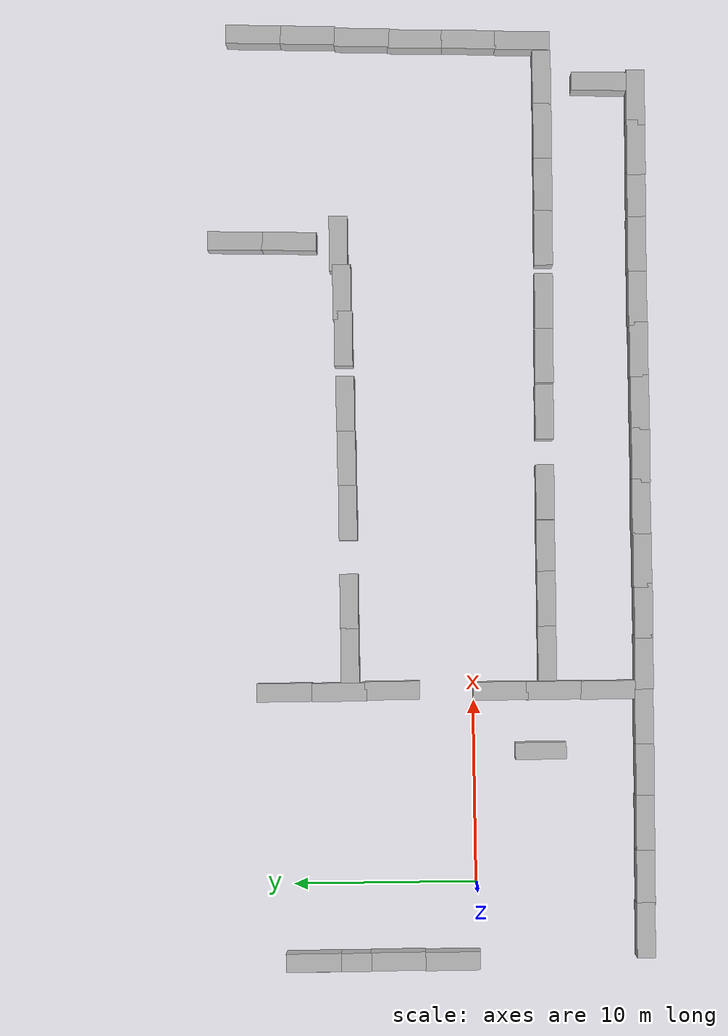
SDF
<sdf version="1.6">
 <world name="default">
  <model name="ground_plane">
   <static>1</static>
   <link name="link">
    <collision name="collision">
     <geometry><plane><normal>0 0 1</normal><size>100 100</size></plane></geometry>
     <surface>
      <contact><collide_bitmask>65535</collide_bitmask></contact>
      <friction><ode><mu>100</mu><mu2>50</mu2></ode></friction>
     </surface>
    </collision>
    <visual name="visual">
     <cast_shadows>0</cast_shadows>
     <geometry><plane><normal>0 0 1</normal><size>100 100</size></plane></geometry>
     <material>
      <script><uri>file://media/materials/scripts/gazebo.material</uri><name>Gazebo/Grey</name></script>
     </material>
    </visual>
   </link>
  </model>
  <model name="brick_box_3x1x3_clone_0">
   <static>1</static>
   <link name="chassis">
    <pose>0 0 1.5 0 -0 0</pose>
    <collision name="collision"><geometry><box><size>3 1 3</size></box></geometry></collision>
    <visual name="visual">
     <geometry><mesh><uri>model://brick_box_3x1x3/meshes/simple_box.dae</uri><scale>3 1 3</scale></mesh></geometry>
     <material>
      <script>
       <uri>model://brick_box_3x1x3/materials/scripts</uri>
       <uri>model://brick_box_3x1x3/materials/textures</uri>
       <name>BrickBox/Diffuse</name>
      </script>
     </material>
    </visual>
   </link>
   <pose>-2.58798 -9.18934 0 0 -0 0</pose>
  </model>
  <model name="brick_box_3x1x3_clone_1">
   <static>1</static>
   <link name="chassis">
    <pose>0 0 1.5 0 -0 0</pose>
    <collision name="collision"><geometry><box><size>3 1 3</size></box></geometry></collision>
    <visual name="visual">
     <geometry><mesh><uri>model://brick_box_3x1x3/meshes/simple_box.dae</uri><scale>3 1 3</scale></mesh></geometry>
     <material>
      <script>
       <uri>model://brick_box_3x1x3/materials/scripts</uri>
       <uri>model://brick_box_3x1x3/materials/textures</uri>
       <name>BrickBox/Diffuse</name>
      </script>
     </material>
    </visual>
   </link>
   <pose>0.25233 -9.21535 0 0 -0 0</pose>
  </model>
  <model name="brick_box_3x1x3_clone_2">
   <static>1</static>
   <link name="chassis">
    <pose>0 0 1.5 0 -0 0</pose>
    <collision name="collision"><geometry><box><size>3 1 3</size></box></geometry></collision>
    <visual name="visual">
     <geometry><mesh><uri>model://brick_box_3x1x3/meshes/simple_box.dae</uri><scale>3 1 3</scale></mesh></geometry>
     <material>
      <script>
       <uri>model://brick_box_3x1x3/materials/scripts</uri>
       <uri>model://brick_box_3x1x3/materials/textures</uri>
       <name>BrickBox/Diffuse</name>
      </script>
     </material>
    </visual>
   </link>
   <pose>3.25958 -9.22941 0 0 -0 0</pose>
  </model>
  <model name="brick_box_3x1x3_clone_3">
   <static>1</static>
   <link name="chassis">
    <pose>0 0 1.5 0 -0 0</pose>
    <collision name="collision"><geometry><box><size>3 1 3</size></box></geometry></collision>
    <visual name="visual">
     <geometry><mesh><uri>model://brick_box_3x1x3/meshes/simple_box.dae</uri><scale>3 1 3</scale></mesh></geometry>
     <material>
      <script>
       <uri>model://brick_box_3x1x3/materials/scripts</uri>
       <uri>model://brick_box_3x1x3/materials/textures</uri>
       <name>BrickBox/Diffuse</name>
      </script>
     </material>
    </visual>
   </link>
   <pose>6.22517 -9.25435 0 0 -0 0</pose>
  </model>
  <model name="brick_box_3x1x3_clone_4">
   <static>1</static>
   <link name="chassis">
    <pose>0 0 1.5 0 -0 0</pose>
    <collision name="collision"><geometry><box><size>3 1 3</size></box></geometry></collision>
    <visual name="visual">
     <geometry><mesh><uri>model://brick_box_3x1x3/meshes/simple_box.dae</uri><scale>3 1 3</scale></mesh></geometry>
     <material>
      <script>
       <uri>model://brick_box_3x1x3/materials/scripts</uri>
       <uri>model://brick_box_3x1x3/materials/textures</uri>
       <name>BrickBox/Diffuse</name>
      </script>
     </material>
    </visual>
   </link>
   <pose>9.04758 -9.24556 0 0 -0 0</pose>
  </model>
  <model name="brick_box_3x1x3_clone_5">
   <static>1</static>
   <link name="chassis">
    <pose>0 0 1.5 0 -0 0</pose>
    <collision name="collision"><geometry><box><size>3 1 3</size></box></geometry></collision>
    <visual name="visual">
     <geometry><mesh><uri>model://brick_box_3x1x3/meshes/simple_box.dae</uri><scale>3 1 3</scale></mesh></geometry>
     <material>
      <script>
       <uri>model://brick_box_3x1x3/materials/scripts</uri>
       <uri>model://brick_box_3x1x3/materials/textures</uri>
       <name>BrickBox/Diffuse</name>
      </script>
     </material>
    </visual>
   </link>
   <pose>11.9991 -9.2785 0 0 -0 0</pose>
  </model>
  <model name="brick_box_3x1x3_clone_6">
   <static>1</static>
   <link name="chassis">
    <pose>0 0 1.5 0 -0 0</pose>
    <collision name="collision"><geometry><box><size>3 1 3</size></box></geometry></collision>
    <visual name="visual">
     <geometry><mesh><uri>model://brick_box_3x1x3/meshes/simple_box.dae</uri><scale>3 1 3</scale></mesh></geometry>
     <material>
      <script>
       <uri>model://brick_box_3x1x3/materials/scripts</uri>
       <uri>model://brick_box_3x1x3/materials/textures</uri>
       <name>BrickBox/Diffuse</name>
      </script>
     </material>
    </visual>
   </link>
   <pose>14.817 -9.29623 0 0 -0 0</pose>
  </model>
  <model name="brick_box_3x1x3_clone_7">
   <static>1</static>
   <link name="chassis">
    <pose>0 0 1.5 0 -0 0</pose>
    <collision name="collision"><geometry><box><size>3 1 3</size></box></geometry></collision>
    <visual name="visual">
     <geometry><mesh><uri>model://brick_box_3x1x3/meshes/simple_box.dae</uri><scale>3 1 3</scale></mesh></geometry>
     <material>
      <script>
       <uri>model://brick_box_3x1x3/materials/scripts</uri>
       <uri>model://brick_box_3x1x3/materials/textures</uri>
       <name>BrickBox/Diffuse</name>
      </script>
     </material>
    </visual>
   </link>
   <pose>17.5815 -9.27386 0 0 -0 0</pose>
  </model>
  <model name="brick_box_3x1x3_clone_8">
   <static>1</static>
   <link name="chassis">
    <pose>0 0 1.5 0 -0 0</pose>
    <collision name="collision"><geometry><box><size>3 1 3</size></box></geometry></collision>
    <visual name="visual">
     <geometry><mesh><uri>model://brick_box_3x1x3/meshes/simple_box.dae</uri><scale>3 1 3</scale></mesh></geometry>
     <material>
      <script>
       <uri>model://brick_box_3x1x3/materials/scripts</uri>
       <uri>model://brick_box_3x1x3/materials/textures</uri>
       <name>BrickBox/Diffuse</name>
      </script>
     </material>
    </visual>
   </link>
   <pose>20.5057 -9.24734 0 0 -0 0</pose>
  </model>
  <model name="brick_box_3x1x3_clone_9">
   <static>1</static>
   <link name="chassis">
    <pose>0 0 1.5 0 -0 0</pose>
    <collision name="collision"><geometry><box><size>3 1 3</size></box></geometry></collision>
    <visual name="visual">
     <geometry><mesh><uri>model://brick_box_3x1x3/meshes/simple_box.dae</uri><scale>3 1 3</scale></mesh></geometry>
     <material>
      <script>
       <uri>model://brick_box_3x1x3/materials/scripts</uri>
       <uri>model://brick_box_3x1x3/materials/textures</uri>
       <name>BrickBox/Diffuse</name>
      </script>
     </material>
    </visual>
   </link>
   <pose>23.2904 -9.26508 0 0 -0 0</pose>
  </model>
  <model name="brick_box_3x1x3_clone_10">
   <static>1</static>
   <link name="chassis">
    <pose>0 0 1.5 0 -0 0</pose>
    <collision name="collision"><geometry><box><size>3 1 3</size></box></geometry></collision>
    <visual name="visual">
     <geometry><mesh><uri>model://brick_box_3x1x3/meshes/simple_box.dae</uri><scale>3 1 3</scale></mesh></geometry>
     <material>
      <script>
       <uri>model://brick_box_3x1x3/materials/scripts</uri>
       <uri>model://brick_box_3x1x3/materials/textures</uri>
       <name>BrickBox/Diffuse</name>
      </script>
     </material>
    </visual>
   </link>
   <pose>26.1977 -9.25158 0 0 -0 0</pose>
  </model>
  <model name="brick_box_3x1x3_clone_11">
   <static>1</static>
   <link name="chassis">
    <pose>0 0 1.5 0 -0 0</pose>
    <collision name="collision"><geometry><box><size>3 1 3</size></box></geometry></collision>
    <visual name="visual">
     <geometry><mesh><uri>model://brick_box_3x1x3/meshes/simple_box.dae</uri><scale>3 1 3</scale></mesh></geometry>
     <material>
      <script>
       <uri>model://brick_box_3x1x3/materials/scripts</uri>
       <uri>model://brick_box_3x1x3/materials/textures</uri>
       <name>BrickBox/Diffuse</name>
      </script>
     </material>
    </visual>
   </link>
   <pose>29.084 -9.23354 0 0 -0 0</pose>
  </model>
  <model name="brick_box_3x1x3_clone_12">
   <static>1</static>
   <link name="chassis">
    <pose>0 0 1.5 0 -0 0</pose>
    <collision name="collision"><geometry><box><size>3 1 3</size></box></geometry></collision>
    <visual name="visual">
     <geometry><mesh><uri>model://brick_box_3x1x3/meshes/simple_box.dae</uri><scale>3 1 3</scale></mesh></geometry>
     <material>
      <script>
       <uri>model://brick_box_3x1x3/materials/scripts</uri>
       <uri>model://brick_box_3x1x3/materials/textures</uri>
       <name>BrickBox/Diffuse</name>
      </script>
     </material>
    </visual>
   </link>
   <pose>31.8711 -9.20709 0 0 -0 0</pose>
  </model>
  <model name="brick_box_3x1x3_0">
   <static>1</static>
   <link name="chassis">
    <pose>0 0 1.5 0 -0 0</pose>
    <collision name="collision"><geometry><box><size>3 1 3</size></box></geometry></collision>
    <visual name="visual">
     <geometry><mesh><uri>model://brick_box_3x1x3/meshes/simple_box.dae</uri><scale>3 1 3</scale></mesh></geometry>
     <material>
      <script>
       <uri>model://brick_box_3x1x3/materials/scripts</uri>
       <uri>model://brick_box_3x1x3/materials/textures</uri>
       <name>BrickBox/Diffuse</name>
      </script>
     </material>
    </visual>
   </link>
   <pose>6.6011 -4.08247 -21.1707 0 0 -1.56593</pose>
  </model>
  <model name="brick_box_3x1x3_1_clone">
   <static>1</static>
   <link name="chassis">
    <pose>0 0 1.5 0 -0 0</pose>
    <collision name="collision"><geometry><box><size>3 1 3</size></box></geometry></collision>
    <visual name="visual">
     <geometry><mesh><uri>model://brick_box_3x1x3/meshes/simple_box.dae</uri><scale>3 1 3</scale></mesh></geometry>
     <material>
      <script>
       <uri>model://brick_box_3x1x3/materials/scripts</uri>
       <uri>model://brick_box_3x1x3/materials/textures</uri>
       <name>BrickBox/Diffuse</name>
      </script>
     </material>
    </visual>
   </link>
   <pose>10.5266 -4.338 0 0 0 -1.56611</pose>
  </model>
  <model name="brick_box_3x1x3_1_clone_0">
   <static>1</static>
   <link name="chassis">
    <pose>0 0 1.5 0 -0 0</pose>
    <collision name="collision"><geometry><box><size>3 1 3</size></box></geometry></collision>
    <visual name="visual">
     <geometry><mesh><uri>model://brick_box_3x1x3/meshes/simple_box.dae</uri><scale>3 1 3</scale></mesh></geometry>
     <material>
      <script>
       <uri>model://brick_box_3x1x3/materials/scripts</uri>
       <uri>model://brick_box_3x1x3/materials/textures</uri>
       <name>BrickBox/Diffuse</name>
      </script>
     </material>
    </visual>
   </link>
   <pose>10.5341 -1.44104 0 0 0 -1.56611</pose>
  </model>
  <model name="brick_box_3x1x3_1_clone_1">
   <static>1</static>
   <link name="chassis">
    <pose>0 0 1.5 0 -0 0</pose>
    <collision name="collision"><geometry><box><size>3 1 3</size></box></geometry></collision>
    <visual name="visual">
     <geometry><mesh><uri>model://brick_box_3x1x3/meshes/simple_box.dae</uri><scale>3 1 3</scale></mesh></geometry>
     <material>
      <script>
       <uri>model://brick_box_3x1x3/materials/scripts</uri>
       <uri>model://brick_box_3x1x3/materials/textures</uri>
       <name>BrickBox/Diffuse</name>
      </script>
     </material>
    </visual>
   </link>
   <pose>10.6272 4.47727 0 0 0 -1.56611</pose>
  </model>
  <model name="brick_box_3x1x3_1_clone_2">
   <static>1</static>
   <link name="chassis">
    <pose>0 0 1.5 0 -0 0</pose>
    <collision name="collision"><geometry><box><size>3 1 3</size></box></geometry></collision>
    <visual name="visual">
     <geometry><mesh><uri>model://brick_box_3x1x3/meshes/simple_box.dae</uri><scale>3 1 3</scale></mesh></geometry>
     <material>
      <script>
       <uri>model://brick_box_3x1x3/materials/scripts</uri>
       <uri>model://brick_box_3x1x3/materials/textures</uri>
       <name>BrickBox/Diffuse</name>
      </script>
     </material>
    </visual>
   </link>
   <pose>10.576 7.33861 0 0 0 -1.56611</pose>
  </model>
  <model name="brick_box_3x1x3_1_clone_3">
   <static>1</static>
   <link name="chassis">
    <pose>0 0 1.5 0 -0 0</pose>
    <collision name="collision"><geometry><box><size>3 1 3</size></box></geometry></collision>
    <visual name="visual">
     <geometry><mesh><uri>model://brick_box_3x1x3/meshes/simple_box.dae</uri><scale>3 1 3</scale></mesh></geometry>
     <material>
      <script>
       <uri>model://brick_box_3x1x3/materials/scripts</uri>
       <uri>model://brick_box_3x1x3/materials/textures</uri>
       <name>BrickBox/Diffuse</name>
      </script>
     </material>
    </visual>
   </link>
   <pose>10.5928 10.3524 0 0 0 -1.56611</pose>
  </model>
  <model name="brick_box_3x1x3_2">
   <static>1</static>
   <link name="chassis">
    <pose>0 0 1.5 0 -0 0</pose>
    <collision name="collision"><geometry><box><size>3 1 3</size></box></geometry></collision>
    <visual name="visual">
     <geometry><mesh><uri>model://brick_box_3x1x3/meshes/simple_box.dae</uri><scale>3 1 3</scale></mesh></geometry>
     <material>
      <script>
       <uri>model://brick_box_3x1x3/materials/scripts</uri>
       <uri>model://brick_box_3x1x3/materials/textures</uri>
       <name>BrickBox/Diffuse</name>
      </script>
     </material>
    </visual>
   </link>
   <pose>12.5701 6.74415 0 0 -0 0</pose>
  </model>
  <model name="brick_box_3x1x3_2_clone">
   <static>1</static>
   <link name="chassis">
    <pose>0 0 1.5 0 -0 0</pose>
    <collision name="collision"><geometry><box><size>3 1 3</size></box></geometry></collision>
    <visual name="visual">
     <geometry><mesh><uri>model://brick_box_3x1x3/meshes/simple_box.dae</uri><scale>3 1 3</scale></mesh></geometry>
     <material>
      <script>
       <uri>model://brick_box_3x1x3/materials/scripts</uri>
       <uri>model://brick_box_3x1x3/materials/textures</uri>
       <name>BrickBox/Diffuse</name>
      </script>
     </material>
    </visual>
   </link>
   <pose>15.5163 6.75439 0 0 -0 0</pose>
  </model>
  <model name="brick_box_3x1x3_1_clone_clone">
   <static>1</static>
   <link name="chassis">
    <pose>0 0 1.5 0 -0 0</pose>
    <collision name="collision"><geometry><box><size>3 1 3</size></box></geometry></collision>
    <visual name="visual">
     <geometry><mesh><uri>model://brick_box_3x1x3/meshes/simple_box.dae</uri><scale>3 1 3</scale></mesh></geometry>
     <material>
      <script>
       <uri>model://brick_box_3x1x3/materials/scripts</uri>
       <uri>model://brick_box_3x1x3/materials/textures</uri>
       <name>BrickBox/Diffuse</name>
      </script>
     </material>
    </visual>
   </link>
   <pose>10.5129 -7.30151 0 0 0 -1.56611</pose>
  </model>
  <model name="brick_box_3x1x3_2_clone_clone">
   <static>1</static>
   <link name="chassis">
    <pose>0 0 1.5 0 -0 0</pose>
    <collision name="collision"><geometry><box><size>3 1 3</size></box></geometry></collision>
    <visual name="visual">
     <geometry><mesh><uri>model://brick_box_3x1x3/meshes/simple_box.dae</uri><scale>3 1 3</scale></mesh></geometry>
     <material>
      <script>
       <uri>model://brick_box_3x1x3/materials/scripts</uri>
       <uri>model://brick_box_3x1x3/materials/textures</uri>
       <name>BrickBox/Diffuse</name>
      </script>
     </material>
    </visual>
   </link>
   <pose>20.3482 6.7602 0 0 -0 0</pose>
  </model>
  <model name="brick_box_3x1x3_2_clone_clone_6">
   <static>1</static>
   <link name="chassis">
    <pose>0 0 1.5 0 -0 0</pose>
    <collision name="collision"><geometry><box><size>3 1 3</size></box></geometry></collision>
    <visual name="visual">
     <geometry><mesh><uri>model://brick_box_3x1x3/meshes/simple_box.dae</uri><scale>3 1 3</scale></mesh></geometry>
     <material>
      <script>
       <uri>model://brick_box_3x1x3/materials/scripts</uri>
       <uri>model://brick_box_3x1x3/materials/textures</uri>
       <name>BrickBox/Diffuse</name>
      </script>
     </material>
    </visual>
   </link>
   <pose>23.3403 6.79053 -0 0 -0 0</pose>
  </model>
  <model name="brick_box_3x1x3_2_clone_clone_7">
   <static>1</static>
   <link name="chassis">
    <pose>0 0 1.5 0 -0 0</pose>
    <collision name="collision"><geometry><box><size>3 1 3</size></box></geometry></collision>
    <visual name="visual">
     <geometry><mesh><uri>model://brick_box_3x1x3/meshes/simple_box.dae</uri><scale>3 1 3</scale></mesh></geometry>
     <material>
      <script>
       <uri>model://brick_box_3x1x3/materials/scripts</uri>
       <uri>model://brick_box_3x1x3/materials/textures</uri>
       <name>BrickBox/Diffuse</name>
      </script>
     </material>
    </visual>
   </link>
   <pose>26.3145 6.82745 0 0 -0 0</pose>
  </model>
  <model name="brick_box_3x1x3_2_clone_clone_8">
   <static>1</static>
   <link name="chassis">
    <pose>0 0 1.5 0 -0 0</pose>
    <collision name="collision"><geometry><box><size>3 1 3</size></box></geometry></collision>
    <visual name="visual">
     <geometry><mesh><uri>model://brick_box_3x1x3/meshes/simple_box.dae</uri><scale>3 1 3</scale></mesh></geometry>
     <material>
      <script>
       <uri>model://brick_box_3x1x3/materials/scripts</uri>
       <uri>model://brick_box_3x1x3/materials/textures</uri>
       <name>BrickBox/Diffuse</name>
      </script>
     </material>
    </visual>
   </link>
   <pose>12.5628 -4.01157 0 0 -0 0</pose>
  </model>
  <model name="brick_box_3x1x3_2_clone_clone_9">
   <static>1</static>
   <link name="chassis">
    <pose>0 0 1.5 0 -0 0</pose>
    <collision name="collision"><geometry><box><size>3 1 3</size></box></geometry></collision>
    <visual name="visual">
     <geometry><mesh><uri>model://brick_box_3x1x3/meshes/simple_box.dae</uri><scale>3 1 3</scale></mesh></geometry>
     <material>
      <script>
       <uri>model://brick_box_3x1x3/materials/scripts</uri>
       <uri>model://brick_box_3x1x3/materials/textures</uri>
       <name>BrickBox/Diffuse</name>
      </script>
     </material>
    </visual>
   </link>
   <pose>15.533 -4.01271 0 0 -0 0</pose>
  </model>
  <model name="brick_box_3x1x3_2_clone_clone_10">
   <static>1</static>
   <link name="chassis">
    <pose>0 0 1.5 0 -0 0</pose>
    <collision name="collision"><geometry><box><size>3 1 3</size></box></geometry></collision>
    <visual name="visual">
     <geometry><mesh><uri>model://brick_box_3x1x3/meshes/simple_box.dae</uri><scale>3 1 3</scale></mesh></geometry>
     <material>
      <script>
       <uri>model://brick_box_3x1x3/materials/scripts</uri>
       <uri>model://brick_box_3x1x3/materials/textures</uri>
       <name>BrickBox/Diffuse</name>
      </script>
     </material>
    </visual>
   </link>
   <pose>18.3198 -4.00332 0 0 -0 0</pose>
  </model>
  <model name="brick_box_3x1x3_2_clone_clone_11">
   <static>1</static>
   <link name="chassis">
    <pose>0 0 1.5 0 -0 0</pose>
    <collision name="collision"><geometry><box><size>3 1 3</size></box></geometry></collision>
    <visual name="visual">
     <geometry><mesh><uri>model://brick_box_3x1x3/meshes/simple_box.dae</uri><scale>3 1 3</scale></mesh></geometry>
     <material>
      <script>
       <uri>model://brick_box_3x1x3/materials/scripts</uri>
       <uri>model://brick_box_3x1x3/materials/textures</uri>
       <name>BrickBox/Diffuse</name>
      </script>
     </material>
    </visual>
   </link>
   <pose>21.3436 -4.01413 0 0 -0 0</pose>
  </model>
  <model name="brick_box_3x1x3_2_clone_clone_12">
   <static>1</static>
   <link name="chassis">
    <pose>0 0 1.5 0 -0 0</pose>
    <collision name="collision"><geometry><box><size>3 1 3</size></box></geometry></collision>
    <visual name="visual">
     <geometry><mesh><uri>model://brick_box_3x1x3/meshes/simple_box.dae</uri><scale>3 1 3</scale></mesh></geometry>
     <material>
      <script>
       <uri>model://brick_box_3x1x3/materials/scripts</uri>
       <uri>model://brick_box_3x1x3/materials/textures</uri>
       <name>BrickBox/Diffuse</name>
      </script>
     </material>
    </visual>
   </link>
   <pose>25.7322 -4.03221 0 0 -0 0</pose>
  </model>
  <model name="brick_box_3x1x3_2_clone_clone_13">
   <static>1</static>
   <link name="chassis">
    <pose>0 0 1.5 0 -0 0</pose>
    <collision name="collision"><geometry><box><size>3 1 3</size></box></geometry></collision>
    <visual name="visual">
     <geometry><mesh><uri>model://brick_box_3x1x3/meshes/simple_box.dae</uri><scale>3 1 3</scale></mesh></geometry>
     <material>
      <script>
       <uri>model://brick_box_3x1x3/materials/scripts</uri>
       <uri>model://brick_box_3x1x3/materials/textures</uri>
       <name>BrickBox/Diffuse</name>
      </script>
     </material>
    </visual>
   </link>
   <pose>28.8146 -4.05727 0 0 -0 0</pose>
  </model>
  <model name="brick_box_3x1x3_2_clone_clone_14">
   <static>1</static>
   <link name="chassis">
    <pose>0 0 1.5 0 -0 0</pose>
    <collision name="collision"><geometry><box><size>3 1 3</size></box></geometry></collision>
    <visual name="visual">
     <geometry><mesh><uri>model://brick_box_3x1x3/meshes/simple_box.dae</uri><scale>3 1 3</scale></mesh></geometry>
     <material>
      <script>
       <uri>model://brick_box_3x1x3/materials/scripts</uri>
       <uri>model://brick_box_3x1x3/materials/textures</uri>
       <name>BrickBox/Diffuse</name>
      </script>
     </material>
    </visual>
   </link>
   <pose>31.8039 -4.08645 0 0 -0 0</pose>
  </model>
  <model name="brick_box_3x1x3_2_clone_clone_15">
   <static>1</static>
   <link name="chassis">
    <pose>0 0 1.5 0 -0 0</pose>
    <collision name="collision"><geometry><box><size>3 1 3</size></box></geometry></collision>
    <visual name="visual">
     <geometry><mesh><uri>model://brick_box_3x1x3/meshes/simple_box.dae</uri><scale>3 1 3</scale></mesh></geometry>
     <material>
      <script>
       <uri>model://brick_box_3x1x3/materials/scripts</uri>
       <uri>model://brick_box_3x1x3/materials/textures</uri>
       <name>BrickBox/Diffuse</name>
      </script>
     </material>
    </visual>
   </link>
   <pose>35.2557 -4.10464 0 0 -0 0</pose>
  </model>
  <model name="brick_box_3x1x3_2_clone_clone_16">
   <static>1</static>
   <link name="chassis">
    <pose>0 0 1.5 0 -0 0</pose>
    <collision name="collision"><geometry><box><size>3 1 3</size></box></geometry></collision>
    <visual name="visual">
     <geometry><mesh><uri>model://brick_box_3x1x3/meshes/simple_box.dae</uri><scale>3 1 3</scale></mesh></geometry>
     <material>
      <script>
       <uri>model://brick_box_3x1x3/materials/scripts</uri>
       <uri>model://brick_box_3x1x3/materials/textures</uri>
       <name>BrickBox/Diffuse</name>
      </script>
     </material>
    </visual>
   </link>
   <pose>38.2081 -4.12264 0 0 -0 0</pose>
  </model>
  <model name="brick_box_3x1x3_2_clone_clone_17">
   <static>1</static>
   <link name="chassis">
    <pose>0 0 1.5 0 -0 0</pose>
    <collision name="collision"><geometry><box><size>3 1 3</size></box></geometry></collision>
    <visual name="visual">
     <geometry><mesh><uri>model://brick_box_3x1x3/meshes/simple_box.dae</uri><scale>3 1 3</scale></mesh></geometry>
     <material>
      <script>
       <uri>model://brick_box_3x1x3/materials/scripts</uri>
       <uri>model://brick_box_3x1x3/materials/textures</uri>
       <name>BrickBox/Diffuse</name>
      </script>
     </material>
    </visual>
   </link>
   <pose>41.1147 -4.13236 0 0 -0 0</pose>
  </model>
  <model name="brick_box_3x1x3_2_clone_clone_18">
   <static>1</static>
   <link name="chassis">
    <pose>0 0 1.5 0 -0 0</pose>
    <collision name="collision"><geometry><box><size>3 1 3</size></box></geometry></collision>
    <visual name="visual">
     <geometry><mesh><uri>model://brick_box_3x1x3/meshes/simple_box.dae</uri><scale>3 1 3</scale></mesh></geometry>
     <material>
      <script>
       <uri>model://brick_box_3x1x3/materials/scripts</uri>
       <uri>model://brick_box_3x1x3/materials/textures</uri>
       <name>BrickBox/Diffuse</name>
      </script>
     </material>
    </visual>
   </link>
   <pose>44.0173 -4.125 0 0 -0 0</pose>
  </model>
  <model name="brick_box_3x1x3_2_clone_clone_19">
   <static>1</static>
   <link name="chassis">
    <pose>0 0 1.5 0 -0 0</pose>
    <collision name="collision"><geometry><box><size>3 1 3</size></box></geometry></collision>
    <visual name="visual">
     <geometry><mesh><uri>model://brick_box_3x1x3/meshes/simple_box.dae</uri><scale>3 1 3</scale></mesh></geometry>
     <material>
      <script>
       <uri>model://brick_box_3x1x3/materials/scripts</uri>
       <uri>model://brick_box_3x1x3/materials/textures</uri>
       <name>BrickBox/Diffuse</name>
      </script>
     </material>
    </visual>
   </link>
   <pose>29.8885 6.88605 0 0 -0 0</pose>
  </model>
  <model name="brick_box_3x1x3_2_clone_clone_20">
   <static>1</static>
   <link name="chassis">
    <pose>0 0 1.5 0 -0 0</pose>
    <collision name="collision"><geometry><box><size>3 1 3</size></box></geometry></collision>
    <visual name="visual">
     <geometry><mesh><uri>model://brick_box_3x1x3/meshes/simple_box.dae</uri><scale>3 1 3</scale></mesh></geometry>
     <material>
      <script>
       <uri>model://brick_box_3x1x3/materials/scripts</uri>
       <uri>model://brick_box_3x1x3/materials/textures</uri>
       <name>BrickBox/Diffuse</name>
      </script>
     </material>
    </visual>
   </link>
   <pose>32.4248 6.94027 0 0 -0 0</pose>
  </model>
  <model name="brick_box_3x1x3_2_clone_clone_21">
   <static>1</static>
   <link name="chassis">
    <pose>0 0 1.5 0 -0 0</pose>
    <collision name="collision"><geometry><box><size>3 1 3</size></box></geometry></collision>
    <visual name="visual">
     <geometry><mesh><uri>model://brick_box_3x1x3/meshes/simple_box.dae</uri><scale>3 1 3</scale></mesh></geometry>
     <material>
      <script>
       <uri>model://brick_box_3x1x3/materials/scripts</uri>
       <uri>model://brick_box_3x1x3/materials/textures</uri>
       <name>BrickBox/Diffuse</name>
      </script>
     </material>
    </visual>
   </link>
   <pose>35.0781 7.09899 0 0 -0 0</pose>
  </model>
  <model name="brick_box_3x1x3_1_clone_12">
   <static>1</static>
   <link name="chassis">
    <pose>0 0 1.5 0 -0 0</pose>
    <collision name="collision"><geometry><box><size>3 1 3</size></box></geometry></collision>
    <visual name="visual">
     <geometry><mesh><uri>model://brick_box_3x1x3/meshes/simple_box.dae</uri><scale>3 1 3</scale></mesh></geometry>
     <material>
      <script>
       <uri>model://brick_box_3x1x3/materials/scripts</uri>
       <uri>model://brick_box_3x1x3/materials/textures</uri>
       <name>BrickBox/Diffuse</name>
      </script>
     </material>
    </visual>
   </link>
   <pose>35.2916 12.7432 0 0 0 -1.59732</pose>
  </model>
  <model name="brick_box_3x1x3_1_clone_13">
   <static>1</static>
   <link name="chassis">
    <pose>0 0 1.5 0 -0 0</pose>
    <collision name="collision"><geometry><box><size>3 1 3</size></box></geometry></collision>
    <visual name="visual">
     <geometry><mesh><uri>model://brick_box_3x1x3/meshes/simple_box.dae</uri><scale>3 1 3</scale></mesh></geometry>
     <material>
      <script>
       <uri>model://brick_box_3x1x3/materials/scripts</uri>
       <uri>model://brick_box_3x1x3/materials/textures</uri>
       <name>BrickBox/Diffuse</name>
      </script>
     </material>
    </visual>
   </link>
   <pose>35.2291 9.79115 0 0 0 -1.59732</pose>
  </model>
  <model name="brick_box_3x1x3_clone_12_clone">
   <static>1</static>
   <link name="chassis">
    <pose>0 0 1.5 0 -0 0</pose>
    <collision name="collision"><geometry><box><size>3 1 3</size></box></geometry></collision>
    <visual name="visual">
     <geometry><mesh><uri>model://brick_box_3x1x3/meshes/simple_box.dae</uri><scale>3 1 3</scale></mesh></geometry>
     <material>
      <script>
       <uri>model://brick_box_3x1x3/materials/scripts</uri>
       <uri>model://brick_box_3x1x3/materials/textures</uri>
       <name>BrickBox/Diffuse</name>
      </script>
     </material>
    </visual>
   </link>
   <pose>34.84 -9.20404 0 0 -0 0</pose>
  </model>
  <model name="brick_box_3x1x3_clone_12_clone_0">
   <static>1</static>
   <link name="chassis">
    <pose>0 0 1.5 0 -0 0</pose>
    <collision name="collision"><geometry><box><size>3 1 3</size></box></geometry></collision>
    <visual name="visual">
     <geometry><mesh><uri>model://brick_box_3x1x3/meshes/simple_box.dae</uri><scale>3 1 3</scale></mesh></geometry>
     <material>
      <script>
       <uri>model://brick_box_3x1x3/materials/scripts</uri>
       <uri>model://brick_box_3x1x3/materials/textures</uri>
       <name>BrickBox/Diffuse</name>
      </script>
     </material>
    </visual>
   </link>
   <pose>37.3458 -9.21914 0 0 -0 0</pose>
  </model>
  <model name="brick_box_3x1x3_clone_12_clone_1">
   <static>1</static>
   <link name="chassis">
    <pose>0 0 1.5 0 -0 0</pose>
    <collision name="collision"><geometry><box><size>3 1 3</size></box></geometry></collision>
    <visual name="visual">
     <geometry><mesh><uri>model://brick_box_3x1x3/meshes/simple_box.dae</uri><scale>3 1 3</scale></mesh></geometry>
     <material>
      <script>
       <uri>model://brick_box_3x1x3/materials/scripts</uri>
       <uri>model://brick_box_3x1x3/materials/textures</uri>
       <name>BrickBox/Diffuse</name>
      </script>
     </material>
    </visual>
   </link>
   <pose>40.1393 -9.2367 0 0 -0 0</pose>
  </model>
  <model name="brick_box_3x1x3_clone_12_clone_2">
   <static>1</static>
   <link name="chassis">
    <pose>0 0 1.5 0 -0 0</pose>
    <collision name="collision"><geometry><box><size>3 1 3</size></box></geometry></collision>
    <visual name="visual">
     <geometry><mesh><uri>model://brick_box_3x1x3/meshes/simple_box.dae</uri><scale>3 1 3</scale></mesh></geometry>
     <material>
      <script>
       <uri>model://brick_box_3x1x3/materials/scripts</uri>
       <uri>model://brick_box_3x1x3/materials/textures</uri>
       <name>BrickBox/Diffuse</name>
      </script>
     </material>
    </visual>
   </link>
   <pose>42.8724 -9.24116 0 0 -0 0</pose>
  </model>
  <model name="brick_box_3x1x3_1_clone_11_clone">
   <static>1</static>
   <link name="chassis">
    <pose>0 0 1.5 0 -0 0</pose>
    <collision name="collision"><geometry><box><size>3 1 3</size></box></geometry></collision>
    <visual name="visual">
     <geometry><mesh><uri>model://brick_box_3x1x3/meshes/simple_box.dae</uri><scale>3 1 3</scale></mesh></geometry>
     <material>
      <script>
       <uri>model://brick_box_3x1x3/materials/scripts</uri>
       <uri>model://brick_box_3x1x3/materials/textures</uri>
       <name>BrickBox/Diffuse</name>
      </script>
     </material>
    </visual>
   </link>
   <pose>43.78 -7.24749 -0 0 0 -1.59732</pose>
  </model>
  <model name="brick_box_3x1x3_1_clone_11_clone_0">
   <static>1</static>
   <link name="chassis">
    <pose>0 0 1.5 0 -0 0</pose>
    <collision name="collision"><geometry><box><size>3 1 3</size></box></geometry></collision>
    <visual name="visual">
     <geometry><mesh><uri>model://brick_box_3x1x3/meshes/simple_box.dae</uri><scale>3 1 3</scale></mesh></geometry>
     <material>
      <script>
       <uri>model://brick_box_3x1x3/materials/scripts</uri>
       <uri>model://brick_box_3x1x3/materials/textures</uri>
       <name>BrickBox/Diffuse</name>
      </script>
     </material>
    </visual>
   </link>
   <pose>46.0656 -3.0824 0 0 0 -1.59732</pose>
  </model>
  <model name="brick_box_3x1x3_1_clone_11_clone_1">
   <static>1</static>
   <link name="chassis">
    <pose>0 0 1.5 0 -0 0</pose>
    <collision name="collision"><geometry><box><size>3 1 3</size></box></geometry></collision>
    <visual name="visual">
     <geometry><mesh><uri>model://brick_box_3x1x3/meshes/simple_box.dae</uri><scale>3 1 3</scale></mesh></geometry>
     <material>
      <script>
       <uri>model://brick_box_3x1x3/materials/scripts</uri>
       <uri>model://brick_box_3x1x3/materials/textures</uri>
       <name>BrickBox/Diffuse</name>
      </script>
     </material>
    </visual>
   </link>
   <pose>46.1631 -0.165509 0 0 0 -1.59732</pose>
  </model>
  <model name="brick_box_3x1x3_1_clone_11_clone_2">
   <static>1</static>
   <link name="chassis">
    <pose>0 0 1.5 0 -0 0</pose>
    <collision name="collision"><geometry><box><size>3 1 3</size></box></geometry></collision>
    <visual name="visual">
     <geometry><mesh><uri>model://brick_box_3x1x3/meshes/simple_box.dae</uri><scale>3 1 3</scale></mesh></geometry>
     <material>
      <script>
       <uri>model://brick_box_3x1x3/materials/scripts</uri>
       <uri>model://brick_box_3x1x3/materials/textures</uri>
       <name>BrickBox/Diffuse</name>
      </script>
     </material>
    </visual>
   </link>
   <pose>46.2251 2.78893 0 0 0 -1.59732</pose>
  </model>
  <model name="brick_box_3x1x3_1_clone_11_clone_3">
   <static>1</static>
   <link name="chassis">
    <pose>0 0 1.5 0 -0 0</pose>
    <collision name="collision"><geometry><box><size>3 1 3</size></box></geometry></collision>
    <visual name="visual">
     <geometry><mesh><uri>model://brick_box_3x1x3/meshes/simple_box.dae</uri><scale>3 1 3</scale></mesh></geometry>
     <material>
      <script>
       <uri>model://brick_box_3x1x3/materials/scripts</uri>
       <uri>model://brick_box_3x1x3/materials/textures</uri>
       <name>BrickBox/Diffuse</name>
      </script>
     </material>
    </visual>
   </link>
   <pose>46.3446 5.68356 0 0 0 -1.59732</pose>
  </model>
  <model name="brick_box_3x1x3_1_clone_11_clone_4">
   <static>1</static>
   <link name="chassis">
    <pose>0 0 1.5 0 -0 0</pose>
    <collision name="collision"><geometry><box><size>3 1 3</size></box></geometry></collision>
    <visual name="visual">
     <geometry><mesh><uri>model://brick_box_3x1x3/meshes/simple_box.dae</uri><scale>3 1 3</scale></mesh></geometry>
     <material>
      <script>
       <uri>model://brick_box_3x1x3/materials/scripts</uri>
       <uri>model://brick_box_3x1x3/materials/textures</uri>
       <name>BrickBox/Diffuse</name>
      </script>
     </material>
    </visual>
   </link>
   <pose>46.503 8.63634 0 0 0 -1.59732</pose>
  </model>
  <model name="brick_box_3x1x3_1_clone_11_clone_5">
   <static>1</static>
   <link name="chassis">
    <pose>0 0 1.5 0 -0 0</pose>
    <collision name="collision"><geometry><box><size>3 1 3</size></box></geometry></collision>
    <visual name="visual">
     <geometry><mesh><uri>model://brick_box_3x1x3/meshes/simple_box.dae</uri><scale>3 1 3</scale></mesh></geometry>
     <material>
      <script>
       <uri>model://brick_box_3x1x3/materials/scripts</uri>
       <uri>model://brick_box_3x1x3/materials/textures</uri>
       <name>BrickBox/Diffuse</name>
      </script>
     </material>
    </visual>
   </link>
   <pose>46.588 11.6123 0 0 0 -1.59732</pose>
  </model>
  <model name="brick_box_3x1x3_1_clone_9_clone_6">
   <static>1</static>
   <link name="chassis">
    <pose>0 0 1.5 0 -0 0</pose>
    <collision name="collision"><geometry><box><size>3 1 3</size></box></geometry></collision>
    <visual name="visual">
     <geometry><mesh><uri>model://brick_box_3x1x3/meshes/simple_box.dae</uri><scale>3 1 3</scale></mesh></geometry>
     <material>
      <script>
       <uri>model://brick_box_3x1x3/materials/scripts</uri>
       <uri>model://brick_box_3x1x3/materials/textures</uri>
       <name>BrickBox/Diffuse</name>
      </script>
     </material>
    </visual>
   </link>
   <pose>-4.13412 1.34002 0 0 0 -1.56611</pose>
  </model>
  <model name="brick_box_3x1x3_1_clone_9_clone_7">
   <static>1</static>
   <link name="chassis">
    <pose>0 0 1.5 0 -0 0</pose>
    <collision name="collision"><geometry><box><size>3 1 3</size></box></geometry></collision>
    <visual name="visual">
     <geometry><mesh><uri>model://brick_box_3x1x3/meshes/simple_box.dae</uri><scale>3 1 3</scale></mesh></geometry>
     <material>
      <script>
       <uri>model://brick_box_3x1x3/materials/scripts</uri>
       <uri>model://brick_box_3x1x3/materials/textures</uri>
       <name>BrickBox/Diffuse</name>
      </script>
     </material>
    </visual>
   </link>
   <pose>-4.1097 4.32165 0 0 0 -1.56611</pose>
  </model>
  <model name="brick_box_3x1x3_1_clone_9_clone_8">
   <static>1</static>
   <link name="chassis">
    <pose>0 0 1.5 0 -0 0</pose>
    <collision name="collision"><geometry><box><size>3 1 3</size></box></geometry></collision>
    <visual name="visual">
     <geometry><mesh><uri>model://brick_box_3x1x3/meshes/simple_box.dae</uri><scale>3 1 3</scale></mesh></geometry>
     <material>
      <script>
       <uri>model://brick_box_3x1x3/materials/scripts</uri>
       <uri>model://brick_box_3x1x3/materials/textures</uri>
       <name>BrickBox/Diffuse</name>
      </script>
     </material>
    </visual>
   </link>
   <pose>-4.13645 7.26409 0 0 0 -1.56611</pose>
  </model>
  <model name="brick_box_3x1x3_1_clone_9_clone_9">
   <static>1</static>
   <link name="chassis">
    <pose>0 0 1.5 0 -0 0</pose>
    <collision name="collision"><geometry><box><size>3 1 3</size></box></geometry></collision>
    <visual name="visual">
     <geometry><mesh><uri>model://brick_box_3x1x3/meshes/simple_box.dae</uri><scale>3 1 3</scale></mesh></geometry>
     <material>
      <script>
       <uri>model://brick_box_3x1x3/materials/scripts</uri>
       <uri>model://brick_box_3x1x3/materials/textures</uri>
       <name>BrickBox/Diffuse</name>
      </script>
     </material>
    </visual>
   </link>
   <pose>-4.13061 8.92397 0 0 0 -1.56611</pose>
  </model>
 </world>
</sdf>
